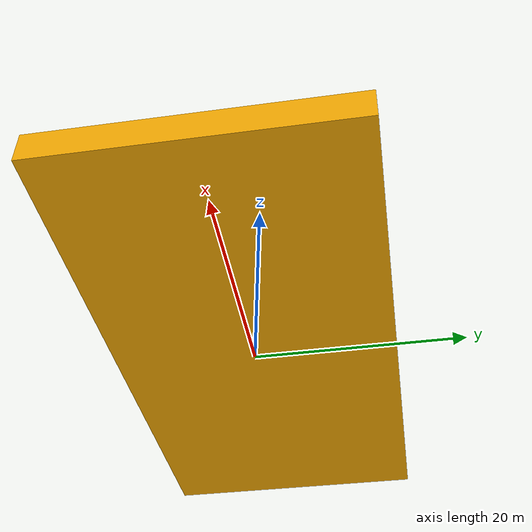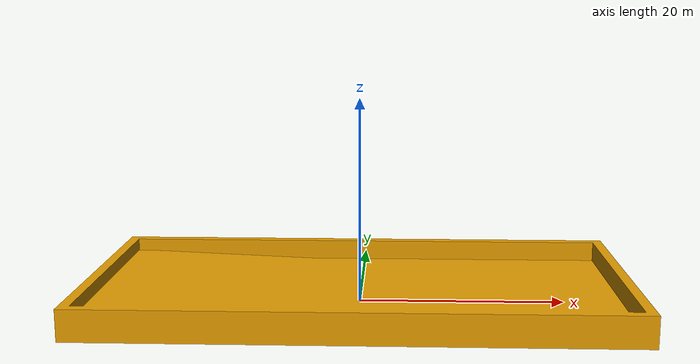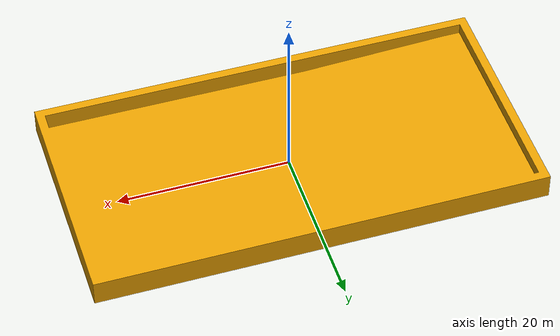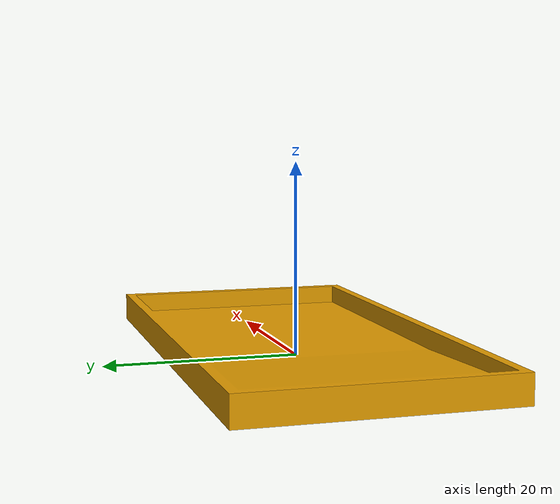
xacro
<?xml version="1.0"?>
<robot
  name="pool" xmlns:xacro="http://www.ros.org/wiki/xacro">
  <xacro:include filename="$(find pool)/urdf/materials.xacro" />
  <xacro:include filename="$(find pool)/urdf/pool.gazebo" />

  <link
    name="Base_link">
    <inertial>
      <origin
        xyz="-8.9797E-16 3.0259E-15 0.75567"
        rpy="0 0 0" />
      <mass
        value="12379000" />
      <inertia
        ixx="935560000"
        ixy="-5.1E-07"
        ixz="2.8051E-08"
        iyy="3143500000"
        iyz="6.3008E-08"
        izz="4066800000" />
    </inertial>

    <visual>
      <origin
        xyz="0 0 0"
        rpy="0 0 0" />
      <geometry>
        <mesh
          filename="package://pool/meshes/pool_final.DAE" />
      </geometry>
    </visual>
    <collision>
      <origin
        xyz="0 0 0"
        rpy="0 0 0" />
      <geometry>
        <mesh
          filename="package://pool/meshes/pool_final.DAE" />
      </geometry>
    </collision>
  </link>

</robot>
